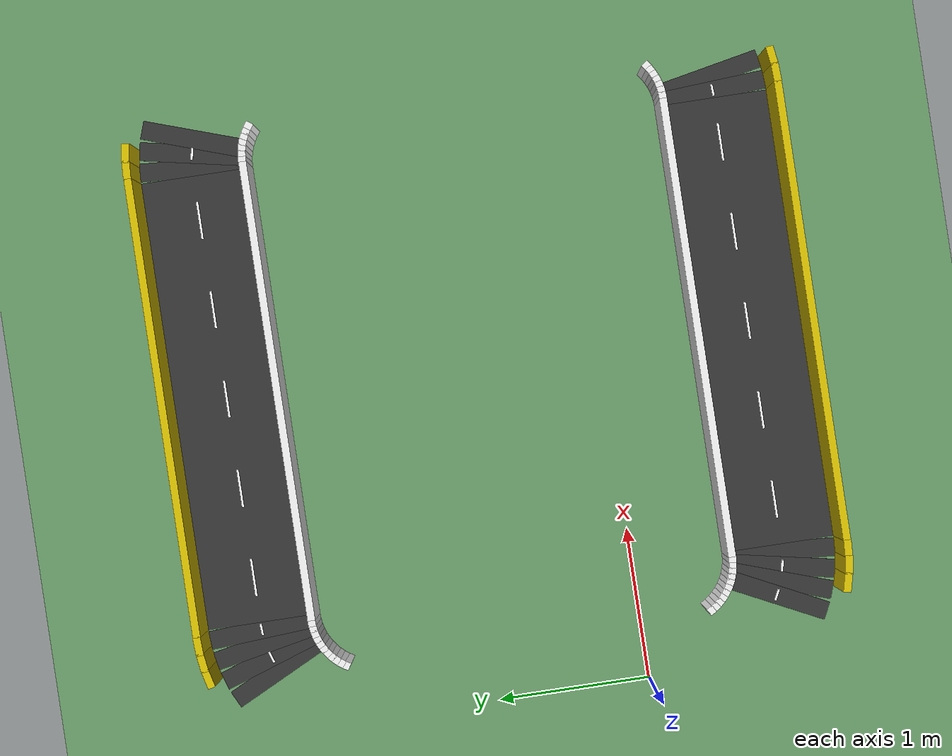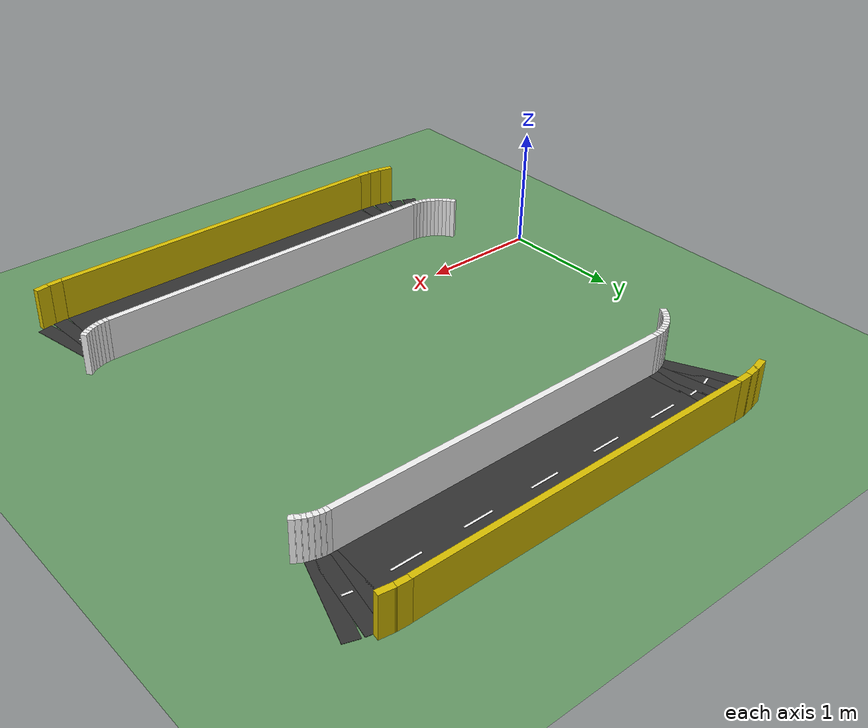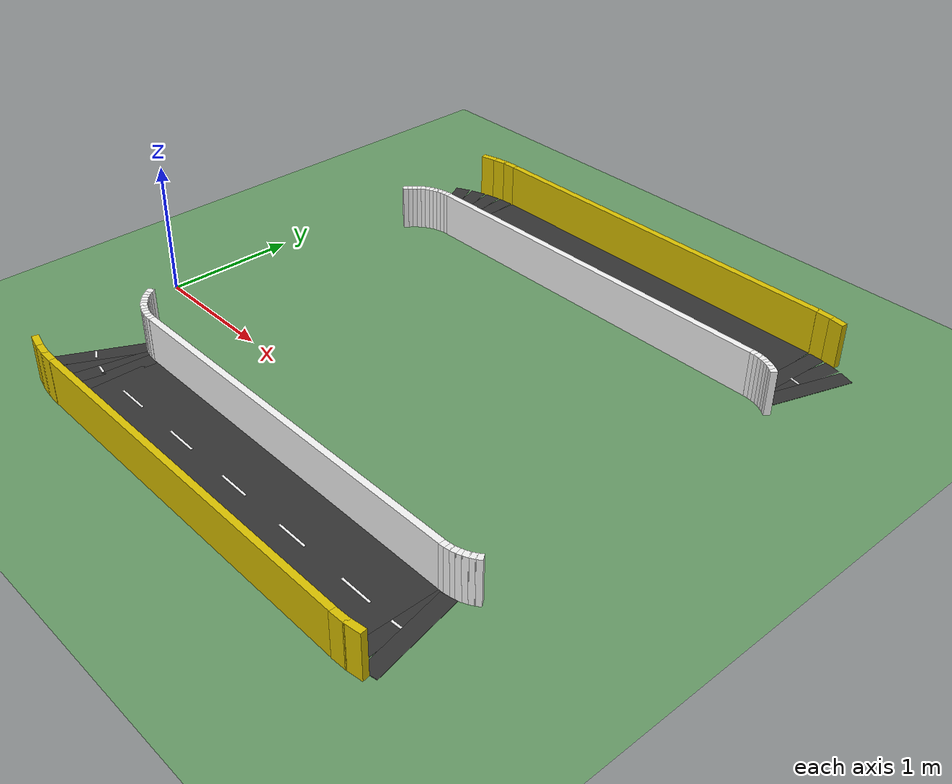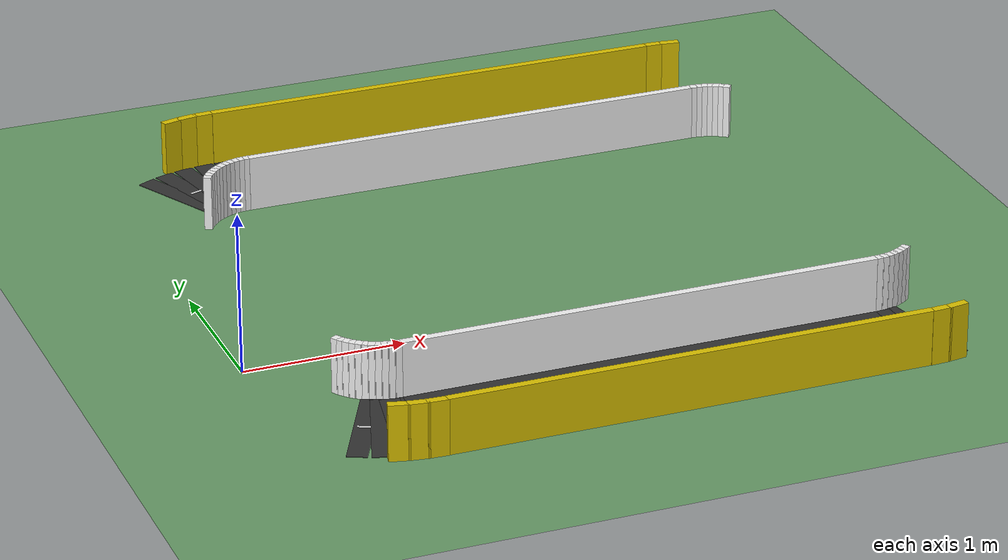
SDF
<sdf version="1.6">
 <world name="city_track">
  <model name="ground_plane">
   <static>true</static>
   <link name="link">
    <collision name="collision">
     <geometry><plane><normal>0 0 1</normal><size>20 20</size></plane></geometry>
     <surface><friction><ode><mu>50</mu><mu2>50</mu2></ode></friction></surface>
    </collision>
    <visual name="visual">
     <geometry><plane><normal>0 0 1</normal><size>20 20</size></plane></geometry>
     <material><ambient>0.4 0.6 0.4 1</ambient><diffuse>0.4 0.6 0.4 1</diffuse></material>
    </visual>
   </link>
  </model>
  <model name="road_top">
   <static>true</static>
   <pose>2.250000 2.500000 0.003000 0 0 0.000000</pose>
   <link name="link">
    <visual name="visual">
     <geometry><box><size>3.000000 0.700000 0.004000</size></box></geometry>
     <material><ambient>0.2 0.2 0.2 1</ambient><diffuse>0.2 0.2 0.2 1</diffuse></material>
    </visual>
   </link>
  </model>
  <model name="road_bottom">
   <static>true</static>
   <pose>2.250000 -1.000000 0.003000 0 0 0.000000</pose>
   <link name="link">
    <visual name="visual">
     <geometry><box><size>3.000000 0.700000 0.004000</size></box></geometry>
     <material><ambient>0.2 0.2 0.2 1</ambient><diffuse>0.2 0.2 0.2 1</diffuse></material>
    </visual>
   </link>
  </model>
  <model name="road_corner_tr_09">
   <static>true</static>
   <pose>3.991080 2.460198 0.003000 0 0 2.814343</pose>
   <link name="link">
    <visual name="visual">
     <geometry><box><size>0.122718 0.700000 0.004000</size></box></geometry>
     <material><ambient>0.2 0.2 0.2 1</ambient><diffuse>0.2 0.2 0.2 1</diffuse></material>
    </visual>
   </link>
  </model>
  <model name="road_corner_tr_10">
   <static>true</static>
   <pose>3.896318 2.485589 0.003000 0 0 2.945243</pose>
   <link name="link">
    <visual name="visual">
     <geometry><box><size>0.122718 0.700000 0.004000</size></box></geometry>
     <material><ambient>0.2 0.2 0.2 1</ambient><diffuse>0.2 0.2 0.2 1</diffuse></material>
    </visual>
   </link>
  </model>
  <model name="road_corner_tr_11">
   <static>true</static>
   <pose>3.799052 2.498394 0.003000 0 0 3.076143</pose>
   <link name="link">
    <visual name="visual">
     <geometry><box><size>0.122718 0.700000 0.004000</size></box></geometry>
     <material><ambient>0.2 0.2 0.2 1</ambient><diffuse>0.2 0.2 0.2 1</diffuse></material>
    </visual>
   </link>
  </model>
  <model name="road_corner_tl_00">
   <static>true</static>
   <pose>0.700948 2.498394 0.003000 0 0 3.207043</pose>
   <link name="link">
    <visual name="visual">
     <geometry><box><size>0.122718 0.700000 0.004000</size></box></geometry>
     <material><ambient>0.2 0.2 0.2 1</ambient><diffuse>0.2 0.2 0.2 1</diffuse></material>
    </visual>
   </link>
  </model>
  <model name="road_corner_tl_01">
   <static>true</static>
   <pose>0.603682 2.485589 0.003000 0 0 3.337942</pose>
   <link name="link">
    <visual name="visual">
     <geometry><box><size>0.122718 0.700000 0.004000</size></box></geometry>
     <material><ambient>0.2 0.2 0.2 1</ambient><diffuse>0.2 0.2 0.2 1</diffuse></material>
    </visual>
   </link>
  </model>
  <model name="road_corner_tl_02">
   <static>true</static>
   <pose>0.508920 2.460198 0.003000 0 0 3.468842</pose>
   <link name="link">
    <visual name="visual">
     <geometry><box><size>0.122718 0.700000 0.004000</size></box></geometry>
     <material><ambient>0.2 0.2 0.2 1</ambient><diffuse>0.2 0.2 0.2 1</diffuse></material>
    </visual>
   </link>
  </model>
  <model name="road_corner_tl_03">
   <static>true</static>
   <pose>0.418283 2.422655 0.003000 0 0 3.599742</pose>
   <link name="link">
    <visual name="visual">
     <geometry><box><size>0.122718 0.700000 0.004000</size></box></geometry>
     <material><ambient>0.2 0.2 0.2 1</ambient><diffuse>0.2 0.2 0.2 1</diffuse></material>
    </visual>
   </link>
  </model>
  <model name="road_corner_bl_08">
   <static>true</static>
   <pose>0.418283 -0.922655 0.003000 0 0 5.825036</pose>
   <link name="link">
    <visual name="visual">
     <geometry><box><size>0.122718 0.700000 0.004000</size></box></geometry>
     <material><ambient>0.2 0.2 0.2 1</ambient><diffuse>0.2 0.2 0.2 1</diffuse></material>
    </visual>
   </link>
  </model>
  <model name="road_corner_bl_09">
   <static>true</static>
   <pose>0.508920 -0.960198 0.003000 0 0 5.955936</pose>
   <link name="link">
    <visual name="visual">
     <geometry><box><size>0.122718 0.700000 0.004000</size></box></geometry>
     <material><ambient>0.2 0.2 0.2 1</ambient><diffuse>0.2 0.2 0.2 1</diffuse></material>
    </visual>
   </link>
  </model>
  <model name="road_corner_bl_10">
   <static>true</static>
   <pose>0.603682 -0.985589 0.003000 0 0 6.086836</pose>
   <link name="link">
    <visual name="visual">
     <geometry><box><size>0.122718 0.700000 0.004000</size></box></geometry>
     <material><ambient>0.2 0.2 0.2 1</ambient><diffuse>0.2 0.2 0.2 1</diffuse></material>
    </visual>
   </link>
  </model>
  <model name="road_corner_bl_11">
   <static>true</static>
   <pose>0.700948 -0.998394 0.003000 0 0 6.217735</pose>
   <link name="link">
    <visual name="visual">
     <geometry><box><size>0.122718 0.700000 0.004000</size></box></geometry>
     <material><ambient>0.2 0.2 0.2 1</ambient><diffuse>0.2 0.2 0.2 1</diffuse></material>
    </visual>
   </link>
  </model>
  <model name="road_corner_br_00">
   <static>true</static>
   <pose>3.799052 -0.998394 0.003000 0 0 0.065450</pose>
   <link name="link">
    <visual name="visual">
     <geometry><box><size>0.122718 0.700000 0.004000</size></box></geometry>
     <material><ambient>0.2 0.2 0.2 1</ambient><diffuse>0.2 0.2 0.2 1</diffuse></material>
    </visual>
   </link>
  </model>
  <model name="road_corner_br_01">
   <static>true</static>
   <pose>3.896318 -0.985589 0.003000 0 0 0.196350</pose>
   <link name="link">
    <visual name="visual">
     <geometry><box><size>0.122718 0.700000 0.004000</size></box></geometry>
     <material><ambient>0.2 0.2 0.2 1</ambient><diffuse>0.2 0.2 0.2 1</diffuse></material>
    </visual>
   </link>
  </model>
  <model name="centerline_top_0">
   <static>true</static>
   <pose>1.050000 2.500000 0.008000 0 0 0.000000</pose>
   <link name="link">
    <visual name="visual">
     <geometry><box><size>0.250000 0.015000 0.004000</size></box></geometry>
     <material><ambient>1 1 1 1</ambient><diffuse>1 1 1 1</diffuse></material>
    </visual>
   </link>
  </model>
  <model name="centerline_top_1">
   <static>true</static>
   <pose>1.650000 2.500000 0.008000 0 0 0.000000</pose>
   <link name="link">
    <visual name="visual">
     <geometry><box><size>0.250000 0.015000 0.004000</size></box></geometry>
     <material><ambient>1 1 1 1</ambient><diffuse>1 1 1 1</diffuse></material>
    </visual>
   </link>
  </model>
  <model name="centerline_top_2">
   <static>true</static>
   <pose>2.250000 2.500000 0.008000 0 0 0.000000</pose>
   <link name="link">
    <visual name="visual">
     <geometry><box><size>0.250000 0.015000 0.004000</size></box></geometry>
     <material><ambient>1 1 1 1</ambient><diffuse>1 1 1 1</diffuse></material>
    </visual>
   </link>
  </model>
  <model name="centerline_top_3">
   <static>true</static>
   <pose>2.850000 2.500000 0.008000 0 0 0.000000</pose>
   <link name="link">
    <visual name="visual">
     <geometry><box><size>0.250000 0.015000 0.004000</size></box></geometry>
     <material><ambient>1 1 1 1</ambient><diffuse>1 1 1 1</diffuse></material>
    </visual>
   </link>
  </model>
  <model name="centerline_top_4">
   <static>true</static>
   <pose>3.450000 2.500000 0.008000 0 0 0.000000</pose>
   <link name="link">
    <visual name="visual">
     <geometry><box><size>0.250000 0.015000 0.004000</size></box></geometry>
     <material><ambient>1 1 1 1</ambient><diffuse>1 1 1 1</diffuse></material>
    </visual>
   </link>
  </model>
  <model name="centerline_bottom_0">
   <static>true</static>
   <pose>1.050000 -1.000000 0.008000 0 0 0.000000</pose>
   <link name="link">
    <visual name="visual">
     <geometry><box><size>0.250000 0.015000 0.004000</size></box></geometry>
     <material><ambient>1 1 1 1</ambient><diffuse>1 1 1 1</diffuse></material>
    </visual>
   </link>
  </model>
  <model name="centerline_bottom_1">
   <static>true</static>
   <pose>1.650000 -1.000000 0.008000 0 0 0.000000</pose>
   <link name="link">
    <visual name="visual">
     <geometry><box><size>0.250000 0.015000 0.004000</size></box></geometry>
     <material><ambient>1 1 1 1</ambient><diffuse>1 1 1 1</diffuse></material>
    </visual>
   </link>
  </model>
  <model name="centerline_bottom_2">
   <static>true</static>
   <pose>2.250000 -1.000000 0.008000 0 0 0.000000</pose>
   <link name="link">
    <visual name="visual">
     <geometry><box><size>0.250000 0.015000 0.004000</size></box></geometry>
     <material><ambient>1 1 1 1</ambient><diffuse>1 1 1 1</diffuse></material>
    </visual>
   </link>
  </model>
  <model name="centerline_bottom_3">
   <static>true</static>
   <pose>2.850000 -1.000000 0.008000 0 0 0.000000</pose>
   <link name="link">
    <visual name="visual">
     <geometry><box><size>0.250000 0.015000 0.004000</size></box></geometry>
     <material><ambient>1 1 1 1</ambient><diffuse>1 1 1 1</diffuse></material>
    </visual>
   </link>
  </model>
  <model name="centerline_bottom_4">
   <static>true</static>
   <pose>3.450000 -1.000000 0.008000 0 0 0.000000</pose>
   <link name="link">
    <visual name="visual">
     <geometry><box><size>0.250000 0.015000 0.004000</size></box></geometry>
     <material><ambient>1 1 1 1</ambient><diffuse>1 1 1 1</diffuse></material>
    </visual>
   </link>
  </model>
  <model name="centerline_road_corner_tr_10">
   <static>true</static>
   <pose>3.896318 2.485589 0.010000 0 0 2.945243</pose>
   <link name="link">
    <visual name="visual">
     <geometry><box><size>0.078540 0.015000 0.004000</size></box></geometry>
     <material><ambient>1 1 1 1</ambient><diffuse>1 1 1 1</diffuse></material>
    </visual>
   </link>
  </model>
  <model name="centerline_road_corner_tl_00">
   <static>true</static>
   <pose>0.700948 2.498394 0.010000 0 0 3.207043</pose>
   <link name="link">
    <visual name="visual">
     <geometry><box><size>0.078540 0.015000 0.004000</size></box></geometry>
     <material><ambient>1 1 1 1</ambient><diffuse>1 1 1 1</diffuse></material>
    </visual>
   </link>
  </model>
  <model name="centerline_road_corner_tl_02">
   <static>true</static>
   <pose>0.508920 2.460198 0.010000 0 0 3.468842</pose>
   <link name="link">
    <visual name="visual">
     <geometry><box><size>0.078540 0.015000 0.004000</size></box></geometry>
     <material><ambient>1 1 1 1</ambient><diffuse>1 1 1 1</diffuse></material>
    </visual>
   </link>
  </model>
  <model name="centerline_road_corner_bl_08">
   <static>true</static>
   <pose>0.418283 -0.922655 0.010000 0 0 5.825036</pose>
   <link name="link">
    <visual name="visual">
     <geometry><box><size>0.078540 0.015000 0.004000</size></box></geometry>
     <material><ambient>1 1 1 1</ambient><diffuse>1 1 1 1</diffuse></material>
    </visual>
   </link>
  </model>
  <model name="centerline_road_corner_bl_10">
   <static>true</static>
   <pose>0.603682 -0.985589 0.010000 0 0 6.086836</pose>
   <link name="link">
    <visual name="visual">
     <geometry><box><size>0.078540 0.015000 0.004000</size></box></geometry>
     <material><ambient>1 1 1 1</ambient><diffuse>1 1 1 1</diffuse></material>
    </visual>
   </link>
  </model>
  <model name="centerline_road_corner_br_00">
   <static>true</static>
   <pose>3.799052 -0.998394 0.010000 0 0 0.065450</pose>
   <link name="link">
    <visual name="visual">
     <geometry><box><size>0.078540 0.015000 0.004000</size></box></geometry>
     <material><ambient>1 1 1 1</ambient><diffuse>1 1 1 1</diffuse></material>
    </visual>
   </link>
  </model>
  <model name="outer_wall_top">
   <static>true</static>
   <pose>2.250000 2.875000 0.175000 0 0 0.000000</pose>
   <link name="link">
    <collision name="collision">
     <geometry><box><size>3.000000 0.050000 0.350000</size></box></geometry>
    </collision>
    <visual name="visual">
     <geometry><box><size>3.000000 0.050000 0.350000</size></box></geometry>
     <material><ambient>0.85 0.75 0.0 1</ambient><diffuse>0.85 0.75 0.0 1</diffuse></material>
    </visual>
   </link>
  </model>
  <model name="outer_wall_bottom">
   <static>true</static>
   <pose>2.250000 -1.375000 0.175000 0 0 0.000000</pose>
   <link name="link">
    <collision name="collision">
     <geometry><box><size>3.000000 0.050000 0.350000</size></box></geometry>
    </collision>
    <visual name="visual">
     <geometry><box><size>3.000000 0.050000 0.350000</size></box></geometry>
     <material><ambient>0.85 0.75 0.0 1</ambient><diffuse>0.85 0.75 0.0 1</diffuse></material>
    </visual>
   </link>
  </model>
  <model name="inner_wall_top">
   <static>true</static>
   <pose>2.250000 2.125000 0.175000 0 0 0.000000</pose>
   <link name="link">
    <collision name="collision">
     <geometry><box><size>3.000000 0.050000 0.350000</size></box></geometry>
    </collision>
    <visual name="visual">
     <geometry><box><size>3.000000 0.050000 0.350000</size></box></geometry>
     <material><ambient>0.95 0.95 0.95 1</ambient><diffuse>0.95 0.95 0.95 1</diffuse></material>
    </visual>
   </link>
  </model>
  <model name="inner_wall_bottom">
   <static>true</static>
   <pose>2.250000 -0.625000 0.175000 0 0 0.000000</pose>
   <link name="link">
    <collision name="collision">
     <geometry><box><size>3.000000 0.050000 0.350000</size></box></geometry>
    </collision>
    <visual name="visual">
     <geometry><box><size>3.000000 0.050000 0.350000</size></box></geometry>
     <material><ambient>0.95 0.95 0.95 1</ambient><diffuse>0.95 0.95 0.95 1</diffuse></material>
    </visual>
   </link>
  </model>
  <model name="inner_wall_corner_tr_09">
   <static>true</static>
   <pose>3.973387 2.051203 0.175000 0 0 2.503457</pose>
   <link name="link">
    <collision name="collision">
     <geometry><box><size>0.044179 0.050000 0.350000</size></box></geometry>
    </collision>
    <visual name="visual">
     <geometry><box><size>0.044179 0.050000 0.350000</size></box></geometry>
     <material><ambient>0.95 0.95 0.95 1</ambient><diffuse>0.95 0.95 0.95 1</diffuse></material>
    </visual>
   </link>
  </model>
  <model name="inner_wall_corner_tr_10">
   <static>true</static>
   <pose>3.942789 2.071648 0.175000 0 0 2.601631</pose>
   <link name="link">
    <collision name="collision">
     <geometry><box><size>0.044179 0.050000 0.350000</size></box></geometry>
    </collision>
    <visual name="visual">
     <geometry><box><size>0.044179 0.050000 0.350000</size></box></geometry>
     <material><ambient>0.95 0.95 0.95 1</ambient><diffuse>0.95 0.95 0.95 1</diffuse></material>
    </visual>
   </link>
  </model>
  <model name="inner_wall_corner_tr_11">
   <static>true</static>
   <pose>3.910333 2.088996 0.175000 0 0 2.699806</pose>
   <link name="link">
    <collision name="collision">
     <geometry><box><size>0.044179 0.050000 0.350000</size></box></geometry>
    </collision>
    <visual name="visual">
     <geometry><box><size>0.044179 0.050000 0.350000</size></box></geometry>
     <material><ambient>0.95 0.95 0.95 1</ambient><diffuse>0.95 0.95 0.95 1</diffuse></material>
    </visual>
   </link>
  </model>
  <model name="inner_wall_corner_tr_12">
   <static>true</static>
   <pose>3.876334 2.103079 0.175000 0 0 2.797981</pose>
   <link name="link">
    <collision name="collision">
     <geometry><box><size>0.044179 0.050000 0.350000</size></box></geometry>
    </collision>
    <visual name="visual">
     <geometry><box><size>0.044179 0.050000 0.350000</size></box></geometry>
     <material><ambient>0.95 0.95 0.95 1</ambient><diffuse>0.95 0.95 0.95 1</diffuse></material>
    </visual>
   </link>
  </model>
  <model name="inner_wall_corner_tr_13">
   <static>true</static>
   <pose>3.841118 2.113762 0.175000 0 0 2.896156</pose>
   <link name="link">
    <collision name="collision">
     <geometry><box><size>0.044179 0.050000 0.350000</size></box></geometry>
    </collision>
    <visual name="visual">
     <geometry><box><size>0.044179 0.050000 0.350000</size></box></geometry>
     <material><ambient>0.95 0.95 0.95 1</ambient><diffuse>0.95 0.95 0.95 1</diffuse></material>
    </visual>
   </link>
  </model>
  <model name="outer_wall_corner_tr_14">
   <static>true</static>
   <pose>3.915072 2.862824 0.175000 0 0 2.994330</pose>
   <link name="link">
    <collision name="collision">
     <geometry><box><size>0.127014 0.050000 0.350000</size></box></geometry>
    </collision>
    <visual name="visual">
     <geometry><box><size>0.127014 0.050000 0.350000</size></box></geometry>
     <material><ambient>0.85 0.75 0.0 1</ambient><diffuse>0.85 0.75 0.0 1</diffuse></material>
    </visual>
   </link>
  </model>
  <model name="inner_wall_corner_tr_14">
   <static>true</static>
   <pose>3.805024 2.120941 0.175000 0 0 2.994330</pose>
   <link name="link">
    <collision name="collision">
     <geometry><box><size>0.044179 0.050000 0.350000</size></box></geometry>
    </collision>
    <visual name="visual">
     <geometry><box><size>0.044179 0.050000 0.350000</size></box></geometry>
     <material><ambient>0.95 0.95 0.95 1</ambient><diffuse>0.95 0.95 0.95 1</diffuse></material>
    </visual>
   </link>
  </model>
  <model name="outer_wall_corner_tr_15">
   <static>true</static>
   <pose>3.805201 2.873645 0.175000 0 0 3.092505</pose>
   <link name="link">
    <collision name="collision">
     <geometry><box><size>0.127014 0.050000 0.350000</size></box></geometry>
    </collision>
    <visual name="visual">
     <geometry><box><size>0.127014 0.050000 0.350000</size></box></geometry>
     <material><ambient>0.85 0.75 0.0 1</ambient><diffuse>0.85 0.75 0.0 1</diffuse></material>
    </visual>
   </link>
  </model>
  <model name="inner_wall_corner_tr_15">
   <static>true</static>
   <pose>3.768400 2.124548 0.175000 0 0 3.092505</pose>
   <link name="link">
    <collision name="collision">
     <geometry><box><size>0.044179 0.050000 0.350000</size></box></geometry>
    </collision>
    <visual name="visual">
     <geometry><box><size>0.044179 0.050000 0.350000</size></box></geometry>
     <material><ambient>0.95 0.95 0.95 1</ambient><diffuse>0.95 0.95 0.95 1</diffuse></material>
    </visual>
   </link>
  </model>
  <model name="outer_wall_corner_tl_00">
   <static>true</static>
   <pose>0.694799 2.873645 0.175000 0 0 3.190680</pose>
   <link name="link">
    <collision name="collision">
     <geometry><box><size>0.127014 0.050000 0.350000</size></box></geometry>
    </collision>
    <visual name="visual">
     <geometry><box><size>0.127014 0.050000 0.350000</size></box></geometry>
     <material><ambient>0.85 0.75 0.0 1</ambient><diffuse>0.85 0.75 0.0 1</diffuse></material>
    </visual>
   </link>
  </model>
  <model name="inner_wall_corner_tl_00">
   <static>true</static>
   <pose>0.731600 2.124548 0.175000 0 0 3.190680</pose>
   <link name="link">
    <collision name="collision">
     <geometry><box><size>0.044179 0.050000 0.350000</size></box></geometry>
    </collision>
    <visual name="visual">
     <geometry><box><size>0.044179 0.050000 0.350000</size></box></geometry>
     <material><ambient>0.95 0.95 0.95 1</ambient><diffuse>0.95 0.95 0.95 1</diffuse></material>
    </visual>
   </link>
  </model>
  <model name="outer_wall_corner_tl_01">
   <static>true</static>
   <pose>0.584928 2.862824 0.175000 0 0 3.288855</pose>
   <link name="link">
    <collision name="collision">
     <geometry><box><size>0.127014 0.050000 0.350000</size></box></geometry>
    </collision>
    <visual name="visual">
     <geometry><box><size>0.127014 0.050000 0.350000</size></box></geometry>
     <material><ambient>0.85 0.75 0.0 1</ambient><diffuse>0.85 0.75 0.0 1</diffuse></material>
    </visual>
   </link>
  </model>
  <model name="inner_wall_corner_tl_01">
   <static>true</static>
   <pose>0.694976 2.120941 0.175000 0 0 3.288855</pose>
   <link name="link">
    <collision name="collision">
     <geometry><box><size>0.044179 0.050000 0.350000</size></box></geometry>
    </collision>
    <visual name="visual">
     <geometry><box><size>0.044179 0.050000 0.350000</size></box></geometry>
     <material><ambient>0.95 0.95 0.95 1</ambient><diffuse>0.95 0.95 0.95 1</diffuse></material>
    </visual>
   </link>
  </model>
  <model name="outer_wall_corner_tl_02">
   <static>true</static>
   <pose>0.476647 2.841285 0.175000 0 0 3.387030</pose>
   <link name="link">
    <collision name="collision">
     <geometry><box><size>0.127014 0.050000 0.350000</size></box></geometry>
    </collision>
    <visual name="visual">
     <geometry><box><size>0.127014 0.050000 0.350000</size></box></geometry>
     <material><ambient>0.85 0.75 0.0 1</ambient><diffuse>0.85 0.75 0.0 1</diffuse></material>
    </visual>
   </link>
  </model>
  <model name="inner_wall_corner_tl_02">
   <static>true</static>
   <pose>0.658882 2.113762 0.175000 0 0 3.387030</pose>
   <link name="link">
    <collision name="collision">
     <geometry><box><size>0.044179 0.050000 0.350000</size></box></geometry>
    </collision>
    <visual name="visual">
     <geometry><box><size>0.044179 0.050000 0.350000</size></box></geometry>
     <material><ambient>0.95 0.95 0.95 1</ambient><diffuse>0.95 0.95 0.95 1</diffuse></material>
    </visual>
   </link>
  </model>
  <model name="inner_wall_corner_tl_03">
   <static>true</static>
   <pose>0.623666 2.103079 0.175000 0 0 3.485204</pose>
   <link name="link">
    <collision name="collision">
     <geometry><box><size>0.044179 0.050000 0.350000</size></box></geometry>
    </collision>
    <visual name="visual">
     <geometry><box><size>0.044179 0.050000 0.350000</size></box></geometry>
     <material><ambient>0.95 0.95 0.95 1</ambient><diffuse>0.95 0.95 0.95 1</diffuse></material>
    </visual>
   </link>
  </model>
  <model name="inner_wall_corner_tl_04">
   <static>true</static>
   <pose>0.589667 2.088996 0.175000 0 0 3.583379</pose>
   <link name="link">
    <collision name="collision">
     <geometry><box><size>0.044179 0.050000 0.350000</size></box></geometry>
    </collision>
    <visual name="visual">
     <geometry><box><size>0.044179 0.050000 0.350000</size></box></geometry>
     <material><ambient>0.95 0.95 0.95 1</ambient><diffuse>0.95 0.95 0.95 1</diffuse></material>
    </visual>
   </link>
  </model>
  <model name="inner_wall_corner_tl_05">
   <static>true</static>
   <pose>0.557211 2.071648 0.175000 0 0 3.681554</pose>
   <link name="link">
    <collision name="collision">
     <geometry><box><size>0.044179 0.050000 0.350000</size></box></geometry>
    </collision>
    <visual name="visual">
     <geometry><box><size>0.044179 0.050000 0.350000</size></box></geometry>
     <material><ambient>0.95 0.95 0.95 1</ambient><diffuse>0.95 0.95 0.95 1</diffuse></material>
    </visual>
   </link>
  </model>
  <model name="inner_wall_corner_tl_06">
   <static>true</static>
   <pose>0.526613 2.051203 0.175000 0 0 3.779729</pose>
   <link name="link">
    <collision name="collision">
     <geometry><box><size>0.044179 0.050000 0.350000</size></box></geometry>
    </collision>
    <visual name="visual">
     <geometry><box><size>0.044179 0.050000 0.350000</size></box></geometry>
     <material><ambient>0.95 0.95 0.95 1</ambient><diffuse>0.95 0.95 0.95 1</diffuse></material>
    </visual>
   </link>
  </model>
  <model name="inner_wall_corner_tl_07">
   <static>true</static>
   <pose>0.498165 2.027857 0.175000 0 0 3.877903</pose>
   <link name="link">
    <collision name="collision">
     <geometry><box><size>0.044179 0.050000 0.350000</size></box></geometry>
    </collision>
    <visual name="visual">
     <geometry><box><size>0.044179 0.050000 0.350000</size></box></geometry>
     <material><ambient>0.95 0.95 0.95 1</ambient><diffuse>0.95 0.95 0.95 1</diffuse></material>
    </visual>
   </link>
  </model>
  <model name="inner_wall_corner_tl_08">
   <static>true</static>
   <pose>0.472143 2.001835 0.175000 0 0 3.976078</pose>
   <link name="link">
    <collision name="collision">
     <geometry><box><size>0.044179 0.050000 0.350000</size></box></geometry>
    </collision>
    <visual name="visual">
     <geometry><box><size>0.044179 0.050000 0.350000</size></box></geometry>
     <material><ambient>0.95 0.95 0.95 1</ambient><diffuse>0.95 0.95 0.95 1</diffuse></material>
    </visual>
   </link>
  </model>
  <model name="inner_wall_corner_tl_09">
   <static>true</static>
   <pose>0.448797 1.973387 0.175000 0 0 4.074253</pose>
   <link name="link">
    <collision name="collision">
     <geometry><box><size>0.044179 0.050000 0.350000</size></box></geometry>
    </collision>
    <visual name="visual">
     <geometry><box><size>0.044179 0.050000 0.350000</size></box></geometry>
     <material><ambient>0.95 0.95 0.95 1</ambient><diffuse>0.95 0.95 0.95 1</diffuse></material>
    </visual>
   </link>
  </model>
  <model name="inner_wall_corner_tl_10">
   <static>true</static>
   <pose>0.428352 1.942789 0.175000 0 0 4.172428</pose>
   <link name="link">
    <collision name="collision">
     <geometry><box><size>0.044179 0.050000 0.350000</size></box></geometry>
    </collision>
    <visual name="visual">
     <geometry><box><size>0.044179 0.050000 0.350000</size></box></geometry>
     <material><ambient>0.95 0.95 0.95 1</ambient><diffuse>0.95 0.95 0.95 1</diffuse></material>
    </visual>
   </link>
  </model>
  <model name="inner_wall_corner_bl_05">
   <static>true</static>
   <pose>0.428352 -0.442789 0.175000 0 0 5.252350</pose>
   <link name="link">
    <collision name="collision">
     <geometry><box><size>0.044179 0.050000 0.350000</size></box></geometry>
    </collision>
    <visual name="visual">
     <geometry><box><size>0.044179 0.050000 0.350000</size></box></geometry>
     <material><ambient>0.95 0.95 0.95 1</ambient><diffuse>0.95 0.95 0.95 1</diffuse></material>
    </visual>
   </link>
  </model>
  <model name="inner_wall_corner_bl_06">
   <static>true</static>
   <pose>0.448797 -0.473387 0.175000 0 0 5.350525</pose>
   <link name="link">
    <collision name="collision">
     <geometry><box><size>0.044179 0.050000 0.350000</size></box></geometry>
    </collision>
    <visual name="visual">
     <geometry><box><size>0.044179 0.050000 0.350000</size></box></geometry>
     <material><ambient>0.95 0.95 0.95 1</ambient><diffuse>0.95 0.95 0.95 1</diffuse></material>
    </visual>
   </link>
  </model>
  <model name="inner_wall_corner_bl_07">
   <static>true</static>
   <pose>0.472143 -0.501835 0.175000 0 0 5.448700</pose>
   <link name="link">
    <collision name="collision">
     <geometry><box><size>0.044179 0.050000 0.350000</size></box></geometry>
    </collision>
    <visual name="visual">
     <geometry><box><size>0.044179 0.050000 0.350000</size></box></geometry>
     <material><ambient>0.95 0.95 0.95 1</ambient><diffuse>0.95 0.95 0.95 1</diffuse></material>
    </visual>
   </link>
  </model>
  <model name="inner_wall_corner_bl_08">
   <static>true</static>
   <pose>0.498165 -0.527857 0.175000 0 0 5.546875</pose>
   <link name="link">
    <collision name="collision">
     <geometry><box><size>0.044179 0.050000 0.350000</size></box></geometry>
    </collision>
    <visual name="visual">
     <geometry><box><size>0.044179 0.050000 0.350000</size></box></geometry>
     <material><ambient>0.95 0.95 0.95 1</ambient><diffuse>0.95 0.95 0.95 1</diffuse></material>
    </visual>
   </link>
  </model>
  <model name="inner_wall_corner_bl_09">
   <static>true</static>
   <pose>0.526613 -0.551203 0.175000 0 0 5.645049</pose>
   <link name="link">
    <collision name="collision">
     <geometry><box><size>0.044179 0.050000 0.350000</size></box></geometry>
    </collision>
    <visual name="visual">
     <geometry><box><size>0.044179 0.050000 0.350000</size></box></geometry>
     <material><ambient>0.95 0.95 0.95 1</ambient><diffuse>0.95 0.95 0.95 1</diffuse></material>
    </visual>
   </link>
  </model>
  <model name="inner_wall_corner_bl_10">
   <static>true</static>
   <pose>0.557211 -0.571648 0.175000 0 0 5.743224</pose>
   <link name="link">
    <collision name="collision">
     <geometry><box><size>0.044179 0.050000 0.350000</size></box></geometry>
    </collision>
    <visual name="visual">
     <geometry><box><size>0.044179 0.050000 0.350000</size></box></geometry>
     <material><ambient>0.95 0.95 0.95 1</ambient><diffuse>0.95 0.95 0.95 1</diffuse></material>
    </visual>
   </link>
  </model>
  <model name="inner_wall_corner_bl_11">
   <static>true</static>
   <pose>0.589667 -0.588996 0.175000 0 0 5.841399</pose>
   <link name="link">
    <collision name="collision">
     <geometry><box><size>0.044179 0.050000 0.350000</size></box></geometry>
    </collision>
    <visual name="visual">
     <geometry><box><size>0.044179 0.050000 0.350000</size></box></geometry>
     <material><ambient>0.95 0.95 0.95 1</ambient><diffuse>0.95 0.95 0.95 1</diffuse></material>
    </visual>
   </link>
  </model>
  <model name="inner_wall_corner_bl_12">
   <static>true</static>
   <pose>0.623666 -0.603079 0.175000 0 0 5.939574</pose>
   <link name="link">
    <collision name="collision">
     <geometry><box><size>0.044179 0.050000 0.350000</size></box></geometry>
    </collision>
    <visual name="visual">
     <geometry><box><size>0.044179 0.050000 0.350000</size></box></geometry>
     <material><ambient>0.95 0.95 0.95 1</ambient><diffuse>0.95 0.95 0.95 1</diffuse></material>
    </visual>
   </link>
  </model>
  <model name="outer_wall_corner_bl_13">
   <static>true</static>
   <pose>0.476647 -1.341285 0.175000 0 0 6.037748</pose>
   <link name="link">
    <collision name="collision">
     <geometry><box><size>0.127014 0.050000 0.350000</size></box></geometry>
    </collision>
    <visual name="visual">
     <geometry><box><size>0.127014 0.050000 0.350000</size></box></geometry>
     <material><ambient>0.85 0.75 0.0 1</ambient><diffuse>0.85 0.75 0.0 1</diffuse></material>
    </visual>
   </link>
  </model>
  <model name="inner_wall_corner_bl_13">
   <static>true</static>
   <pose>0.658882 -0.613762 0.175000 0 0 6.037748</pose>
   <link name="link">
    <collision name="collision">
     <geometry><box><size>0.044179 0.050000 0.350000</size></box></geometry>
    </collision>
    <visual name="visual">
     <geometry><box><size>0.044179 0.050000 0.350000</size></box></geometry>
     <material><ambient>0.95 0.95 0.95 1</ambient><diffuse>0.95 0.95 0.95 1</diffuse></material>
    </visual>
   </link>
  </model>
  <model name="outer_wall_corner_bl_14">
   <static>true</static>
   <pose>0.584928 -1.362824 0.175000 0 0 6.135923</pose>
   <link name="link">
    <collision name="collision">
     <geometry><box><size>0.127014 0.050000 0.350000</size></box></geometry>
    </collision>
    <visual name="visual">
     <geometry><box><size>0.127014 0.050000 0.350000</size></box></geometry>
     <material><ambient>0.85 0.75 0.0 1</ambient><diffuse>0.85 0.75 0.0 1</diffuse></material>
    </visual>
   </link>
  </model>
  <model name="inner_wall_corner_bl_14">
   <static>true</static>
   <pose>0.694976 -0.620941 0.175000 0 0 6.135923</pose>
   <link name="link">
    <collision name="collision">
     <geometry><box><size>0.044179 0.050000 0.350000</size></box></geometry>
    </collision>
    <visual name="visual">
     <geometry><box><size>0.044179 0.050000 0.350000</size></box></geometry>
     <material><ambient>0.95 0.95 0.95 1</ambient><diffuse>0.95 0.95 0.95 1</diffuse></material>
    </visual>
   </link>
  </model>
  <model name="outer_wall_corner_bl_15">
   <static>true</static>
   <pose>0.694799 -1.373645 0.175000 0 0 6.234098</pose>
   <link name="link">
    <collision name="collision">
     <geometry><box><size>0.127014 0.050000 0.350000</size></box></geometry>
    </collision>
    <visual name="visual">
     <geometry><box><size>0.127014 0.050000 0.350000</size></box></geometry>
     <material><ambient>0.85 0.75 0.0 1</ambient><diffuse>0.85 0.75 0.0 1</diffuse></material>
    </visual>
   </link>
  </model>
  <model name="inner_wall_corner_bl_15">
   <static>true</static>
   <pose>0.731600 -0.624548 0.175000 0 0 6.234098</pose>
   <link name="link">
    <collision name="collision">
     <geometry><box><size>0.044179 0.050000 0.350000</size></box></geometry>
    </collision>
    <visual name="visual">
     <geometry><box><size>0.044179 0.050000 0.350000</size></box></geometry>
     <material><ambient>0.95 0.95 0.95 1</ambient><diffuse>0.95 0.95 0.95 1</diffuse></material>
    </visual>
   </link>
  </model>
  <model name="outer_wall_corner_br_00">
   <static>true</static>
   <pose>3.805201 -1.373645 0.175000 0 0 0.049087</pose>
   <link name="link">
    <collision name="collision">
     <geometry><box><size>0.127014 0.050000 0.350000</size></box></geometry>
    </collision>
    <visual name="visual">
     <geometry><box><size>0.127014 0.050000 0.350000</size></box></geometry>
     <material><ambient>0.85 0.75 0.0 1</ambient><diffuse>0.85 0.75 0.0 1</diffuse></material>
    </visual>
   </link>
  </model>
  <model name="inner_wall_corner_br_00">
   <static>true</static>
   <pose>3.768400 -0.624548 0.175000 0 0 0.049087</pose>
   <link name="link">
    <collision name="collision">
     <geometry><box><size>0.044179 0.050000 0.350000</size></box></geometry>
    </collision>
    <visual name="visual">
     <geometry><box><size>0.044179 0.050000 0.350000</size></box></geometry>
     <material><ambient>0.95 0.95 0.95 1</ambient><diffuse>0.95 0.95 0.95 1</diffuse></material>
    </visual>
   </link>
  </model>
  <model name="outer_wall_corner_br_01">
   <static>true</static>
   <pose>3.915072 -1.362824 0.175000 0 0 0.147262</pose>
   <link name="link">
    <collision name="collision">
     <geometry><box><size>0.127014 0.050000 0.350000</size></box></geometry>
    </collision>
    <visual name="visual">
     <geometry><box><size>0.127014 0.050000 0.350000</size></box></geometry>
     <material><ambient>0.85 0.75 0.0 1</ambient><diffuse>0.85 0.75 0.0 1</diffuse></material>
    </visual>
   </link>
  </model>
  <model name="inner_wall_corner_br_01">
   <static>true</static>
   <pose>3.805024 -0.620941 0.175000 0 0 0.147262</pose>
   <link name="link">
    <collision name="collision">
     <geometry><box><size>0.044179 0.050000 0.350000</size></box></geometry>
    </collision>
    <visual name="visual">
     <geometry><box><size>0.044179 0.050000 0.350000</size></box></geometry>
     <material><ambient>0.95 0.95 0.95 1</ambient><diffuse>0.95 0.95 0.95 1</diffuse></material>
    </visual>
   </link>
  </model>
  <model name="inner_wall_corner_br_02">
   <static>true</static>
   <pose>3.841118 -0.613762 0.175000 0 0 0.245437</pose>
   <link name="link">
    <collision name="collision">
     <geometry><box><size>0.044179 0.050000 0.350000</size></box></geometry>
    </collision>
    <visual name="visual">
     <geometry><box><size>0.044179 0.050000 0.350000</size></box></geometry>
     <material><ambient>0.95 0.95 0.95 1</ambient><diffuse>0.95 0.95 0.95 1</diffuse></material>
    </visual>
   </link>
  </model>
  <model name="inner_wall_corner_br_03">
   <static>true</static>
   <pose>3.876334 -0.603079 0.175000 0 0 0.343612</pose>
   <link name="link">
    <collision name="collision">
     <geometry><box><size>0.044179 0.050000 0.350000</size></box></geometry>
    </collision>
    <visual name="visual">
     <geometry><box><size>0.044179 0.050000 0.350000</size></box></geometry>
     <material><ambient>0.95 0.95 0.95 1</ambient><diffuse>0.95 0.95 0.95 1</diffuse></material>
    </visual>
   </link>
  </model>
  <model name="inner_wall_corner_br_04">
   <static>true</static>
   <pose>3.910333 -0.588996 0.175000 0 0 0.441786</pose>
   <link name="link">
    <collision name="collision">
     <geometry><box><size>0.044179 0.050000 0.350000</size></box></geometry>
    </collision>
    <visual name="visual">
     <geometry><box><size>0.044179 0.050000 0.350000</size></box></geometry>
     <material><ambient>0.95 0.95 0.95 1</ambient><diffuse>0.95 0.95 0.95 1</diffuse></material>
    </visual>
   </link>
  </model>
  <model name="inner_wall_corner_br_05">
   <static>true</static>
   <pose>3.942789 -0.571648 0.175000 0 0 0.539961</pose>
   <link name="link">
    <collision name="collision">
     <geometry><box><size>0.044179 0.050000 0.350000</size></box></geometry>
    </collision>
    <visual name="visual">
     <geometry><box><size>0.044179 0.050000 0.350000</size></box></geometry>
     <material><ambient>0.95 0.95 0.95 1</ambient><diffuse>0.95 0.95 0.95 1</diffuse></material>
    </visual>
   </link>
  </model>
  <model name="inner_wall_corner_br_06">
   <static>true</static>
   <pose>3.973387 -0.551203 0.175000 0 0 0.638136</pose>
   <link name="link">
    <collision name="collision">
     <geometry><box><size>0.044179 0.050000 0.350000</size></box></geometry>
    </collision>
    <visual name="visual">
     <geometry><box><size>0.044179 0.050000 0.350000</size></box></geometry>
     <material><ambient>0.95 0.95 0.95 1</ambient><diffuse>0.95 0.95 0.95 1</diffuse></material>
    </visual>
   </link>
  </model>
 </world>
</sdf>
